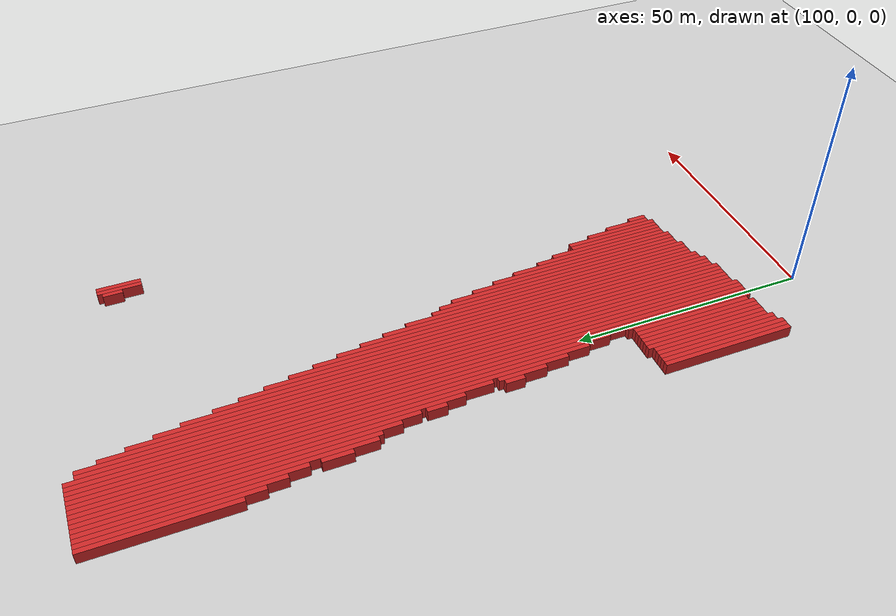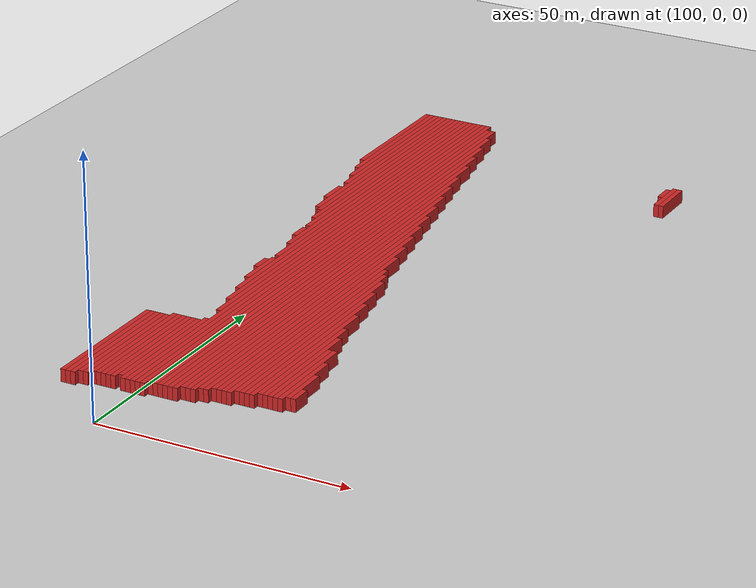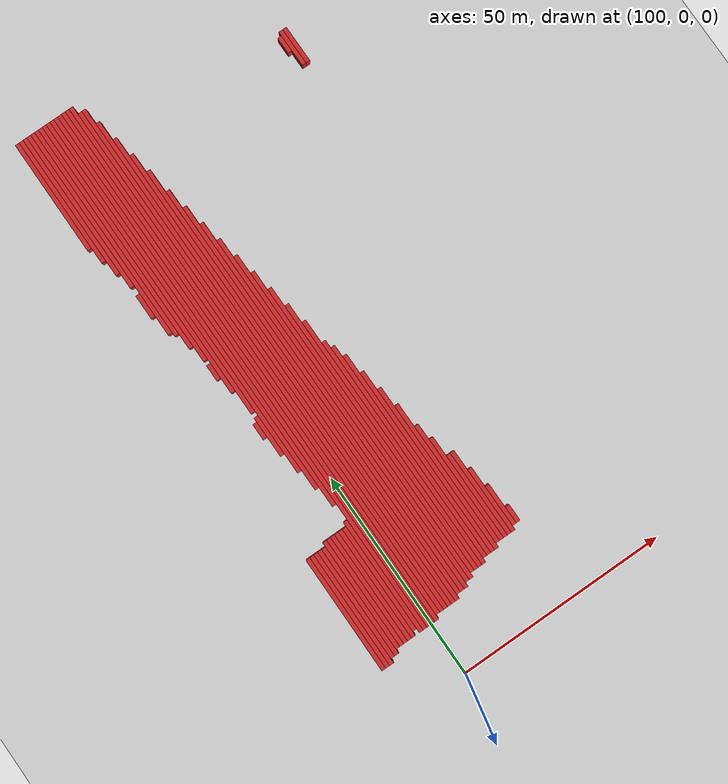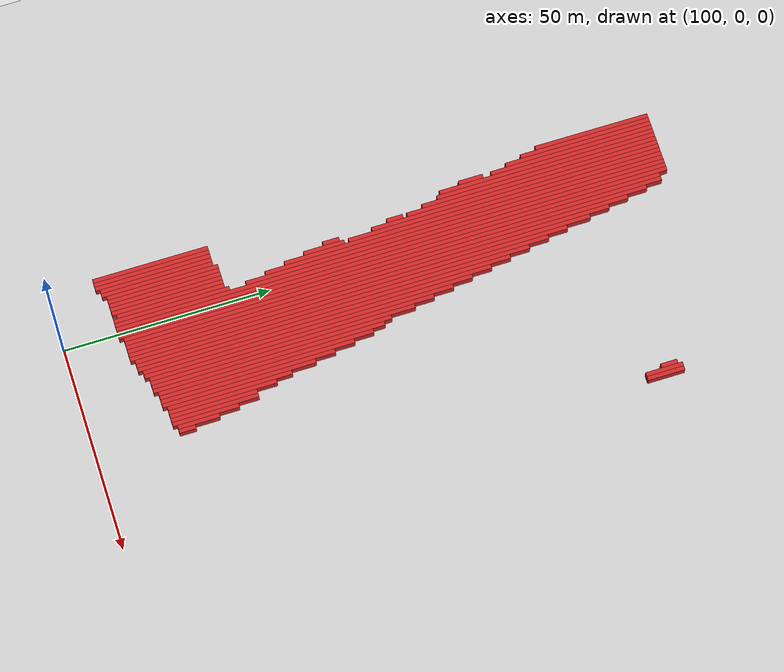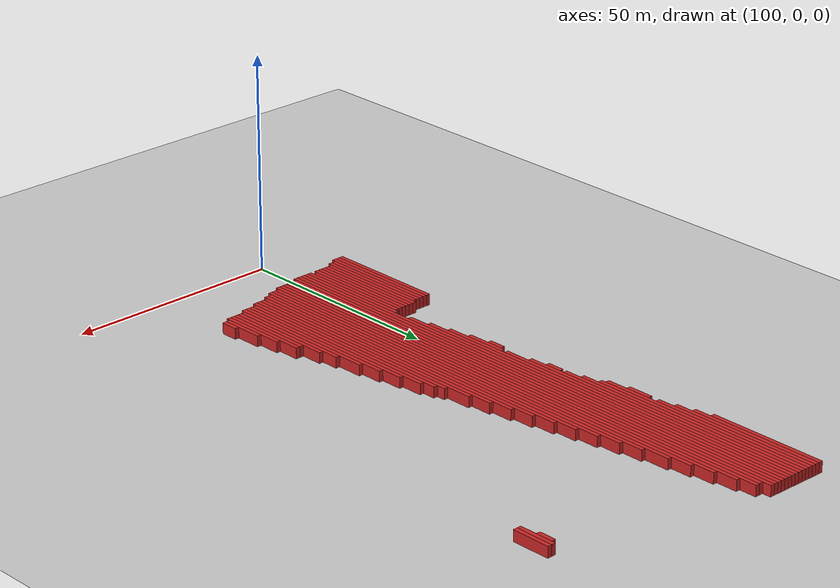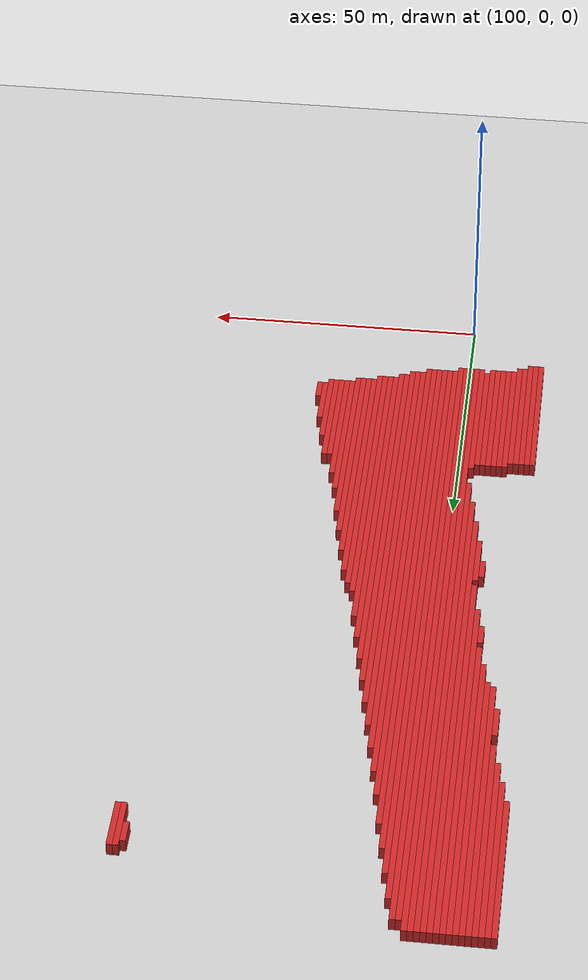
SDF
<sdf version="1.4">
 <world name="1_wall">
  <model name="ground_plane">
   <static>1</static>
   <link name="link">
    <collision name="collision">
     <geometry><plane><normal>0 0 1</normal><size>1000 1000</size></plane></geometry>
     <surface><friction><ode><mu>100</mu><mu2>50</mu2></ode></friction></surface>
    </collision>
    <visual name="visual">
     <cast_shadows>0</cast_shadows>
     <geometry><plane><normal>0 0 1</normal><size>10000 10000</size></plane></geometry>
     <material>
      <script><uri>file://media/materials/scripts/gazebo.material</uri><name>Gazebo/Grey</name></script>
     </material>
    </visual>
    <velocity_decay><linear>0</linear><angular>0</angular></velocity_decay>
   </link>
  </model>
  <model name="Wall_125">
   <static>1</static>
   <link name="Wall_125">
    <collision name="Wall_Collision_125">
     <geometry><box><size>28.0 1.0 2.5</size></box></geometry>
     <pose>0 0 1.25 0 -0 0</pose>
    </collision>
    <visual name="Wall_Visual_125">
     <pose>0 0 1.25 0 -0 0</pose>
     <geometry><box><size>28.0 1.0 2.5</size></box></geometry>
     <material>
      <script><uri>file://media/materials/scripts/gazebo.material</uri><name>Gazebo/Red</name></script>
     </material>
    </visual>
    <velocity_decay><linear>0</linear><angular>0</angular></velocity_decay>
    <pose>85.5 134.0 0 0 0 1.5707963267948966</pose>
   </link>
  </model>
  <model name="Wall_126">
   <static>1</static>
   <link name="Wall_126">
    <collision name="Wall_Collision_126">
     <geometry><box><size>28.0 1.0 2.5</size></box></geometry>
     <pose>0 0 1.25 0 -0 0</pose>
    </collision>
    <visual name="Wall_Visual_126">
     <pose>0 0 1.25 0 -0 0</pose>
     <geometry><box><size>28.0 1.0 2.5</size></box></geometry>
     <material>
      <script><uri>file://media/materials/scripts/gazebo.material</uri><name>Gazebo/Red</name></script>
     </material>
    </visual>
    <velocity_decay><linear>0</linear><angular>0</angular></velocity_decay>
    <pose>86.5 25.0 0 0 0 1.5707963267948966</pose>
   </link>
  </model>
  <model name="Wall_127">
   <static>1</static>
   <link name="Wall_127">
    <collision name="Wall_Collision_127">
     <geometry><box><size>32.0 1.0 2.5</size></box></geometry>
     <pose>0 0 1.25 0 -0 0</pose>
    </collision>
    <visual name="Wall_Visual_127">
     <pose>0 0 1.25 0 -0 0</pose>
     <geometry><box><size>32.0 1.0 2.5</size></box></geometry>
     <material>
      <script><uri>file://media/materials/scripts/gazebo.material</uri><name>Gazebo/Red</name></script>
     </material>
    </visual>
    <velocity_decay><linear>0</linear><angular>0</angular></velocity_decay>
    <pose>86.5 132.0 0 0 0 1.5707963267948966</pose>
   </link>
  </model>
  <model name="Wall_128">
   <static>1</static>
   <link name="Wall_128">
    <collision name="Wall_Collision_128">
     <geometry><box><size>28.0 1.0 2.5</size></box></geometry>
     <pose>0 0 1.25 0 -0 0</pose>
    </collision>
    <visual name="Wall_Visual_128">
     <pose>0 0 1.25 0 -0 0</pose>
     <geometry><box><size>28.0 1.0 2.5</size></box></geometry>
     <material>
      <script><uri>file://media/materials/scripts/gazebo.material</uri><name>Gazebo/Red</name></script>
     </material>
    </visual>
    <velocity_decay><linear>0</linear><angular>0</angular></velocity_decay>
    <pose>87.5 25.0 0 0 0 1.5707963267948966</pose>
   </link>
  </model>
  <model name="Wall_129">
   <static>1</static>
   <link name="Wall_129">
    <collision name="Wall_Collision_129">
     <geometry><box><size>36.0 1.0 2.5</size></box></geometry>
     <pose>0 0 1.25 0 -0 0</pose>
    </collision>
    <visual name="Wall_Visual_129">
     <pose>0 0 1.25 0 -0 0</pose>
     <geometry><box><size>36.0 1.0 2.5</size></box></geometry>
     <material>
      <script><uri>file://media/materials/scripts/gazebo.material</uri><name>Gazebo/Red</name></script>
     </material>
    </visual>
    <velocity_decay><linear>0</linear><angular>0</angular></velocity_decay>
    <pose>87.5 130.0 0 0 0 1.5707963267948966</pose>
   </link>
  </model>
  <model name="Wall_130">
   <static>1</static>
   <link name="Wall_130">
    <collision name="Wall_Collision_130">
     <geometry><box><size>28.0 1.0 2.5</size></box></geometry>
     <pose>0 0 1.25 0 -0 0</pose>
    </collision>
    <visual name="Wall_Visual_130">
     <pose>0 0 1.25 0 -0 0</pose>
     <geometry><box><size>28.0 1.0 2.5</size></box></geometry>
     <material>
      <script><uri>file://media/materials/scripts/gazebo.material</uri><name>Gazebo/Red</name></script>
     </material>
    </visual>
    <velocity_decay><linear>0</linear><angular>0</angular></velocity_decay>
    <pose>88.5 25.0 0 0 0 1.5707963267948966</pose>
   </link>
  </model>
  <model name="Wall_131">
   <static>1</static>
   <link name="Wall_131">
    <collision name="Wall_Collision_131">
     <geometry><box><size>6.0 1.0 2.5</size></box></geometry>
     <pose>0 0 1.25 0 -0 0</pose>
    </collision>
    <visual name="Wall_Visual_131">
     <pose>0 0 1.25 0 -0 0</pose>
     <geometry><box><size>6.0 1.0 2.5</size></box></geometry>
     <material>
      <script><uri>file://media/materials/scripts/gazebo.material</uri><name>Gazebo/Red</name></script>
     </material>
    </visual>
    <velocity_decay><linear>0</linear><angular>0</angular></velocity_decay>
    <pose>88.5 103.0 0 0 0 1.5707963267948966</pose>
   </link>
  </model>
  <model name="Wall_132">
   <static>1</static>
   <link name="Wall_132">
    <collision name="Wall_Collision_132">
     <geometry><box><size>40.0 1.0 2.5</size></box></geometry>
     <pose>0 0 1.25 0 -0 0</pose>
    </collision>
    <visual name="Wall_Visual_132">
     <pose>0 0 1.25 0 -0 0</pose>
     <geometry><box><size>40.0 1.0 2.5</size></box></geometry>
     <material>
      <script><uri>file://media/materials/scripts/gazebo.material</uri><name>Gazebo/Red</name></script>
     </material>
    </visual>
    <velocity_decay><linear>0</linear><angular>0</angular></velocity_decay>
    <pose>88.5 128.0 0 0 0 1.5707963267948966</pose>
   </link>
  </model>
  <model name="Wall_133">
   <static>1</static>
   <link name="Wall_133">
    <collision name="Wall_Collision_133">
     <geometry><box><size>27.0 1.0 2.5</size></box></geometry>
     <pose>0 0 1.25 0 -0 0</pose>
    </collision>
    <visual name="Wall_Visual_133">
     <pose>0 0 1.25 0 -0 0</pose>
     <geometry><box><size>27.0 1.0 2.5</size></box></geometry>
     <material>
      <script><uri>file://media/materials/scripts/gazebo.material</uri><name>Gazebo/Red</name></script>
     </material>
    </visual>
    <velocity_decay><linear>0</linear><angular>0</angular></velocity_decay>
    <pose>89.5 25.5 0 0 0 1.5707963267948966</pose>
   </link>
  </model>
  <model name="Wall_134">
   <static>1</static>
   <link name="Wall_134">
    <collision name="Wall_Collision_134">
     <geometry><box><size>53.0 1.0 2.5</size></box></geometry>
     <pose>0 0 1.25 0 -0 0</pose>
    </collision>
    <visual name="Wall_Visual_134">
     <pose>0 0 1.25 0 -0 0</pose>
     <geometry><box><size>53.0 1.0 2.5</size></box></geometry>
     <material>
      <script><uri>file://media/materials/scripts/gazebo.material</uri><name>Gazebo/Red</name></script>
     </material>
    </visual>
    <velocity_decay><linear>0</linear><angular>0</angular></velocity_decay>
    <pose>89.5 121.5 0 0 0 1.5707963267948966</pose>
   </link>
  </model>
  <model name="Wall_135">
   <static>1</static>
   <link name="Wall_135">
    <collision name="Wall_Collision_135">
     <geometry><box><size>27.0 1.0 2.5</size></box></geometry>
     <pose>0 0 1.25 0 -0 0</pose>
    </collision>
    <visual name="Wall_Visual_135">
     <pose>0 0 1.25 0 -0 0</pose>
     <geometry><box><size>27.0 1.0 2.5</size></box></geometry>
     <material>
      <script><uri>file://media/materials/scripts/gazebo.material</uri><name>Gazebo/Red</name></script>
     </material>
    </visual>
    <velocity_decay><linear>0</linear><angular>0</angular></velocity_decay>
    <pose>90.5 25.5 0 0 0 1.5707963267948966</pose>
   </link>
  </model>
  <model name="Wall_136">
   <static>1</static>
   <link name="Wall_136">
    <collision name="Wall_Collision_136">
     <geometry><box><size>54.0 1.0 2.5</size></box></geometry>
     <pose>0 0 1.25 0 -0 0</pose>
    </collision>
    <visual name="Wall_Visual_136">
     <pose>0 0 1.25 0 -0 0</pose>
     <geometry><box><size>54.0 1.0 2.5</size></box></geometry>
     <material>
      <script><uri>file://media/materials/scripts/gazebo.material</uri><name>Gazebo/Red</name></script>
     </material>
    </visual>
    <velocity_decay><linear>0</linear><angular>0</angular></velocity_decay>
    <pose>90.5 121.0 0 0 0 1.5707963267948966</pose>
   </link>
  </model>
  <model name="Wall_137">
   <static>1</static>
   <link name="Wall_137">
    <collision name="Wall_Collision_137">
     <geometry><box><size>27.0 1.0 2.5</size></box></geometry>
     <pose>0 0 1.25 0 -0 0</pose>
    </collision>
    <visual name="Wall_Visual_137">
     <pose>0 0 1.25 0 -0 0</pose>
     <geometry><box><size>27.0 1.0 2.5</size></box></geometry>
     <material>
      <script><uri>file://media/materials/scripts/gazebo.material</uri><name>Gazebo/Red</name></script>
     </material>
    </visual>
    <velocity_decay><linear>0</linear><angular>0</angular></velocity_decay>
    <pose>91.5 26.5 0 0 0 1.5707963267948966</pose>
   </link>
  </model>
  <model name="Wall_138">
   <static>1</static>
   <link name="Wall_138">
    <collision name="Wall_Collision_138">
     <geometry><box><size>58.0 1.0 2.5</size></box></geometry>
     <pose>0 0 1.25 0 -0 0</pose>
    </collision>
    <visual name="Wall_Visual_138">
     <pose>0 0 1.25 0 -0 0</pose>
     <geometry><box><size>58.0 1.0 2.5</size></box></geometry>
     <material>
      <script><uri>file://media/materials/scripts/gazebo.material</uri><name>Gazebo/Red</name></script>
     </material>
    </visual>
    <velocity_decay><linear>0</linear><angular>0</angular></velocity_decay>
    <pose>91.5 119.0 0 0 0 1.5707963267948966</pose>
   </link>
  </model>
  <model name="Wall_139">
   <static>1</static>
   <link name="Wall_139">
    <collision name="Wall_Collision_139">
     <geometry><box><size>27.0 1.0 2.5</size></box></geometry>
     <pose>0 0 1.25 0 -0 0</pose>
    </collision>
    <visual name="Wall_Visual_139">
     <pose>0 0 1.25 0 -0 0</pose>
     <geometry><box><size>27.0 1.0 2.5</size></box></geometry>
     <material>
      <script><uri>file://media/materials/scripts/gazebo.material</uri><name>Gazebo/Red</name></script>
     </material>
    </visual>
    <velocity_decay><linear>0</linear><angular>0</angular></velocity_decay>
    <pose>92.5 26.5 0 0 0 1.5707963267948966</pose>
   </link>
  </model>
  <model name="Wall_140">
   <static>1</static>
   <link name="Wall_140">
    <collision name="Wall_Collision_140">
     <geometry><box><size>4.0 1.0 2.5</size></box></geometry>
     <pose>0 0 1.25 0 -0 0</pose>
    </collision>
    <visual name="Wall_Visual_140">
     <pose>0 0 1.25 0 -0 0</pose>
     <geometry><box><size>4.0 1.0 2.5</size></box></geometry>
     <material>
      <script><uri>file://media/materials/scripts/gazebo.material</uri><name>Gazebo/Red</name></script>
     </material>
    </visual>
    <velocity_decay><linear>0</linear><angular>0</angular></velocity_decay>
    <pose>92.5 83.0 0 0 0 1.5707963267948966</pose>
   </link>
  </model>
  <model name="Wall_141">
   <static>1</static>
   <link name="Wall_141">
    <collision name="Wall_Collision_141">
     <geometry><box><size>62.0 1.0 2.5</size></box></geometry>
     <pose>0 0 1.25 0 -0 0</pose>
    </collision>
    <visual name="Wall_Visual_141">
     <pose>0 0 1.25 0 -0 0</pose>
     <geometry><box><size>62.0 1.0 2.5</size></box></geometry>
     <material>
      <script><uri>file://media/materials/scripts/gazebo.material</uri><name>Gazebo/Red</name></script>
     </material>
    </visual>
    <velocity_decay><linear>0</linear><angular>0</angular></velocity_decay>
    <pose>92.5 117.0 0 0 0 1.5707963267948966</pose>
   </link>
  </model>
  <model name="Wall_142">
   <static>1</static>
   <link name="Wall_142">
    <collision name="Wall_Collision_142">
     <geometry><box><size>27.0 1.0 2.5</size></box></geometry>
     <pose>0 0 1.25 0 -0 0</pose>
    </collision>
    <visual name="Wall_Visual_142">
     <pose>0 0 1.25 0 -0 0</pose>
     <geometry><box><size>27.0 1.0 2.5</size></box></geometry>
     <material>
      <script><uri>file://media/materials/scripts/gazebo.material</uri><name>Gazebo/Red</name></script>
     </material>
    </visual>
    <velocity_decay><linear>0</linear><angular>0</angular></velocity_decay>
    <pose>93.5 26.5 0 0 0 1.5707963267948966</pose>
   </link>
  </model>
  <model name="Wall_143">
   <static>1</static>
   <link name="Wall_143">
    <collision name="Wall_Collision_143">
     <geometry><box><size>4.0 1.0 2.5</size></box></geometry>
     <pose>0 0 1.25 0 -0 0</pose>
    </collision>
    <visual name="Wall_Visual_143">
     <pose>0 0 1.25 0 -0 0</pose>
     <geometry><box><size>4.0 1.0 2.5</size></box></geometry>
     <material>
      <script><uri>file://media/materials/scripts/gazebo.material</uri><name>Gazebo/Red</name></script>
     </material>
    </visual>
    <velocity_decay><linear>0</linear><angular>0</angular></velocity_decay>
    <pose>93.5 67.0 0 0 0 1.5707963267948966</pose>
   </link>
  </model>
  <model name="Wall_144">
   <static>1</static>
   <link name="Wall_144">
    <collision name="Wall_Collision_144">
     <geometry><box><size>71.0 1.0 2.5</size></box></geometry>
     <pose>0 0 1.25 0 -0 0</pose>
    </collision>
    <visual name="Wall_Visual_144">
     <pose>0 0 1.25 0 -0 0</pose>
     <geometry><box><size>71.0 1.0 2.5</size></box></geometry>
     <material>
      <script><uri>file://media/materials/scripts/gazebo.material</uri><name>Gazebo/Red</name></script>
     </material>
    </visual>
    <velocity_decay><linear>0</linear><angular>0</angular></velocity_decay>
    <pose>93.5 112.5 0 0 0 1.5707963267948966</pose>
   </link>
  </model>
  <model name="Wall_145">
   <static>1</static>
   <link name="Wall_145">
    <collision name="Wall_Collision_145">
     <geometry><box><size>27.0 1.0 2.5</size></box></geometry>
     <pose>0 0 1.25 0 -0 0</pose>
    </collision>
    <visual name="Wall_Visual_145">
     <pose>0 0 1.25 0 -0 0</pose>
     <geometry><box><size>27.0 1.0 2.5</size></box></geometry>
     <material>
      <script><uri>file://media/materials/scripts/gazebo.material</uri><name>Gazebo/Red</name></script>
     </material>
    </visual>
    <velocity_decay><linear>0</linear><angular>0</angular></velocity_decay>
    <pose>94.5 26.5 0 0 0 1.5707963267948966</pose>
   </link>
  </model>
  <model name="Wall_146">
   <static>1</static>
   <link name="Wall_146">
    <collision name="Wall_Collision_146">
     <geometry><box><size>10.0 1.0 2.5</size></box></geometry>
     <pose>0 0 1.25 0 -0 0</pose>
    </collision>
    <visual name="Wall_Visual_146">
     <pose>0 0 1.25 0 -0 0</pose>
     <geometry><box><size>10.0 1.0 2.5</size></box></geometry>
     <material>
      <script><uri>file://media/materials/scripts/gazebo.material</uri><name>Gazebo/Red</name></script>
     </material>
    </visual>
    <velocity_decay><linear>0</linear><angular>0</angular></velocity_decay>
    <pose>94.5 65.0 0 0 0 1.5707963267948966</pose>
   </link>
  </model>
  <model name="Wall_147">
   <static>1</static>
   <link name="Wall_147">
    <collision name="Wall_Collision_147">
     <geometry><box><size>77.0 1.0 2.5</size></box></geometry>
     <pose>0 0 1.25 0 -0 0</pose>
    </collision>
    <visual name="Wall_Visual_147">
     <pose>0 0 1.25 0 -0 0</pose>
     <geometry><box><size>77.0 1.0 2.5</size></box></geometry>
     <material>
      <script><uri>file://media/materials/scripts/gazebo.material</uri><name>Gazebo/Red</name></script>
     </material>
    </visual>
    <velocity_decay><linear>0</linear><angular>0</angular></velocity_decay>
    <pose>94.5 109.5 0 0 0 1.5707963267948966</pose>
   </link>
  </model>
  <model name="Wall_148">
   <static>1</static>
   <link name="Wall_148">
    <collision name="Wall_Collision_148">
     <geometry><box><size>27.0 1.0 2.5</size></box></geometry>
     <pose>0 0 1.25 0 -0 0</pose>
    </collision>
    <visual name="Wall_Visual_148">
     <pose>0 0 1.25 0 -0 0</pose>
     <geometry><box><size>27.0 1.0 2.5</size></box></geometry>
     <material>
      <script><uri>file://media/materials/scripts/gazebo.material</uri><name>Gazebo/Red</name></script>
     </material>
    </visual>
    <velocity_decay><linear>0</linear><angular>0</angular></velocity_decay>
    <pose>95.5 26.5 0 0 0 1.5707963267948966</pose>
   </link>
  </model>
  <model name="Wall_149">
   <static>1</static>
   <link name="Wall_149">
    <collision name="Wall_Collision_149">
     <geometry><box><size>93.0 1.0 2.5</size></box></geometry>
     <pose>0 0 1.25 0 -0 0</pose>
    </collision>
    <visual name="Wall_Visual_149">
     <pose>0 0 1.25 0 -0 0</pose>
     <geometry><box><size>93.0 1.0 2.5</size></box></geometry>
     <material>
      <script><uri>file://media/materials/scripts/gazebo.material</uri><name>Gazebo/Red</name></script>
     </material>
    </visual>
    <velocity_decay><linear>0</linear><angular>0</angular></velocity_decay>
    <pose>95.5 101.5 0 0 0 1.5707963267948966</pose>
   </link>
  </model>
  <model name="Wall_150">
   <static>1</static>
   <link name="Wall_150">
    <collision name="Wall_Collision_150">
     <geometry><box><size>26.0 1.0 2.5</size></box></geometry>
     <pose>0 0 1.25 0 -0 0</pose>
    </collision>
    <visual name="Wall_Visual_150">
     <pose>0 0 1.25 0 -0 0</pose>
     <geometry><box><size>26.0 1.0 2.5</size></box></geometry>
     <material>
      <script><uri>file://media/materials/scripts/gazebo.material</uri><name>Gazebo/Red</name></script>
     </material>
    </visual>
    <velocity_decay><linear>0</linear><angular>0</angular></velocity_decay>
    <pose>96.5 27.0 0 0 0 1.5707963267948966</pose>
   </link>
  </model>
  <model name="Wall_151">
   <static>1</static>
   <link name="Wall_151">
    <collision name="Wall_Collision_151">
     <geometry><box><size>98.0 1.0 2.5</size></box></geometry>
     <pose>0 0 1.25 0 -0 0</pose>
    </collision>
    <visual name="Wall_Visual_151">
     <pose>0 0 1.25 0 -0 0</pose>
     <geometry><box><size>98.0 1.0 2.5</size></box></geometry>
     <material>
      <script><uri>file://media/materials/scripts/gazebo.material</uri><name>Gazebo/Red</name></script>
     </material>
    </visual>
    <velocity_decay><linear>0</linear><angular>0</angular></velocity_decay>
    <pose>96.5 99.0 0 0 0 1.5707963267948966</pose>
   </link>
  </model>
  <model name="Wall_152">
   <static>1</static>
   <link name="Wall_152">
    <collision name="Wall_Collision_152">
     <geometry><box><size>28.0 1.0 2.5</size></box></geometry>
     <pose>0 0 1.25 0 -0 0</pose>
    </collision>
    <visual name="Wall_Visual_152">
     <pose>0 0 1.25 0 -0 0</pose>
     <geometry><box><size>28.0 1.0 2.5</size></box></geometry>
     <material>
      <script><uri>file://media/materials/scripts/gazebo.material</uri><name>Gazebo/Red</name></script>
     </material>
    </visual>
    <velocity_decay><linear>0</linear><angular>0</angular></velocity_decay>
    <pose>97.5 27.0 0 0 0 1.5707963267948966</pose>
   </link>
  </model>
  <model name="Wall_153">
   <static>1</static>
   <link name="Wall_153">
    <collision name="Wall_Collision_153">
     <geometry><box><size>103.0 1.0 2.5</size></box></geometry>
     <pose>0 0 1.25 0 -0 0</pose>
    </collision>
    <visual name="Wall_Visual_153">
     <pose>0 0 1.25 0 -0 0</pose>
     <geometry><box><size>103.0 1.0 2.5</size></box></geometry>
     <material>
      <script><uri>file://media/materials/scripts/gazebo.material</uri><name>Gazebo/Red</name></script>
     </material>
    </visual>
    <velocity_decay><linear>0</linear><angular>0</angular></velocity_decay>
    <pose>97.5 96.5 0 0 0 1.5707963267948966</pose>
   </link>
  </model>
  <model name="Wall_154">
   <static>1</static>
   <link name="Wall_154">
    <collision name="Wall_Collision_154">
     <geometry><box><size>135.0 1.0 2.5</size></box></geometry>
     <pose>0 0 1.25 0 -0 0</pose>
    </collision>
    <visual name="Wall_Visual_154">
     <pose>0 0 1.25 0 -0 0</pose>
     <geometry><box><size>135.0 1.0 2.5</size></box></geometry>
     <material>
      <script><uri>file://media/materials/scripts/gazebo.material</uri><name>Gazebo/Red</name></script>
     </material>
    </visual>
    <velocity_decay><linear>0</linear><angular>0</angular></velocity_decay>
    <pose>98.5 80.5 0 0 0 1.5707963267948966</pose>
   </link>
  </model>
  <model name="Wall_155">
   <static>1</static>
   <link name="Wall_155">
    <collision name="Wall_Collision_155">
     <geometry><box><size>135.0 1.0 2.5</size></box></geometry>
     <pose>0 0 1.25 0 -0 0</pose>
    </collision>
    <visual name="Wall_Visual_155">
     <pose>0 0 1.25 0 -0 0</pose>
     <geometry><box><size>135.0 1.0 2.5</size></box></geometry>
     <material>
      <script><uri>file://media/materials/scripts/gazebo.material</uri><name>Gazebo/Red</name></script>
     </material>
    </visual>
    <velocity_decay><linear>0</linear><angular>0</angular></velocity_decay>
    <pose>99.5 80.5 0 0 0 1.5707963267948966</pose>
   </link>
  </model>
  <model name="Wall_156">
   <static>1</static>
   <link name="Wall_156">
    <collision name="Wall_Collision_156">
     <geometry><box><size>133.0 1.0 2.5</size></box></geometry>
     <pose>0 0 1.25 0 -0 0</pose>
    </collision>
    <visual name="Wall_Visual_156">
     <pose>0 0 1.25 0 -0 0</pose>
     <geometry><box><size>133.0 1.0 2.5</size></box></geometry>
     <material>
      <script><uri>file://media/materials/scripts/gazebo.material</uri><name>Gazebo/Red</name></script>
     </material>
    </visual>
    <velocity_decay><linear>0</linear><angular>0</angular></velocity_decay>
    <pose>100.5 79.5 0 0 0 1.5707963267948966</pose>
   </link>
  </model>
  <model name="Wall_157">
   <static>1</static>
   <link name="Wall_157">
    <collision name="Wall_Collision_157">
     <geometry><box><size>133.0 1.0 2.5</size></box></geometry>
     <pose>0 0 1.25 0 -0 0</pose>
    </collision>
    <visual name="Wall_Visual_157">
     <pose>0 0 1.25 0 -0 0</pose>
     <geometry><box><size>133.0 1.0 2.5</size></box></geometry>
     <material>
      <script><uri>file://media/materials/scripts/gazebo.material</uri><name>Gazebo/Red</name></script>
     </material>
    </visual>
    <velocity_decay><linear>0</linear><angular>0</angular></velocity_decay>
    <pose>101.5 79.5 0 0 0 1.5707963267948966</pose>
   </link>
  </model>
  <model name="Wall_158">
   <static>1</static>
   <link name="Wall_158">
    <collision name="Wall_Collision_158">
     <geometry><box><size>128.0 1.0 2.5</size></box></geometry>
     <pose>0 0 1.25 0 -0 0</pose>
    </collision>
    <visual name="Wall_Visual_158">
     <pose>0 0 1.25 0 -0 0</pose>
     <geometry><box><size>128.0 1.0 2.5</size></box></geometry>
     <material>
      <script><uri>file://media/materials/scripts/gazebo.material</uri><name>Gazebo/Red</name></script>
     </material>
    </visual>
    <velocity_decay><linear>0</linear><angular>0</angular></velocity_decay>
    <pose>102.5 78.0 0 0 0 1.5707963267948966</pose>
   </link>
  </model>
  <model name="Wall_159">
   <static>1</static>
   <link name="Wall_159">
    <collision name="Wall_Collision_159">
     <geometry><box><size>123.0 1.0 2.5</size></box></geometry>
     <pose>0 0 1.25 0 -0 0</pose>
    </collision>
    <visual name="Wall_Visual_159">
     <pose>0 0 1.25 0 -0 0</pose>
     <geometry><box><size>123.0 1.0 2.5</size></box></geometry>
     <material>
      <script><uri>file://media/materials/scripts/gazebo.material</uri><name>Gazebo/Red</name></script>
     </material>
    </visual>
    <velocity_decay><linear>0</linear><angular>0</angular></velocity_decay>
    <pose>103.5 75.5 0 0 0 1.5707963267948966</pose>
   </link>
  </model>
  <model name="Wall_160">
   <static>1</static>
   <link name="Wall_160">
    <collision name="Wall_Collision_160">
     <geometry><box><size>118.0 1.0 2.5</size></box></geometry>
     <pose>0 0 1.25 0 -0 0</pose>
    </collision>
    <visual name="Wall_Visual_160">
     <pose>0 0 1.25 0 -0 0</pose>
     <geometry><box><size>118.0 1.0 2.5</size></box></geometry>
     <material>
      <script><uri>file://media/materials/scripts/gazebo.material</uri><name>Gazebo/Red</name></script>
     </material>
    </visual>
    <velocity_decay><linear>0</linear><angular>0</angular></velocity_decay>
    <pose>104.5 73.0 0 0 0 1.5707963267948966</pose>
   </link>
  </model>
  <model name="Wall_161">
   <static>1</static>
   <link name="Wall_161">
    <collision name="Wall_Collision_161">
     <geometry><box><size>113.0 1.0 2.5</size></box></geometry>
     <pose>0 0 1.25 0 -0 0</pose>
    </collision>
    <visual name="Wall_Visual_161">
     <pose>0 0 1.25 0 -0 0</pose>
     <geometry><box><size>113.0 1.0 2.5</size></box></geometry>
     <material>
      <script><uri>file://media/materials/scripts/gazebo.material</uri><name>Gazebo/Red</name></script>
     </material>
    </visual>
    <velocity_decay><linear>0</linear><angular>0</angular></velocity_decay>
    <pose>105.5 70.5 0 0 0 1.5707963267948966</pose>
   </link>
  </model>
  <model name="Wall_162">
   <static>1</static>
   <link name="Wall_162">
    <collision name="Wall_Collision_162">
     <geometry><box><size>107.0 1.0 2.5</size></box></geometry>
     <pose>0 0 1.25 0 -0 0</pose>
    </collision>
    <visual name="Wall_Visual_162">
     <pose>0 0 1.25 0 -0 0</pose>
     <geometry><box><size>107.0 1.0 2.5</size></box></geometry>
     <material>
      <script><uri>file://media/materials/scripts/gazebo.material</uri><name>Gazebo/Red</name></script>
     </material>
    </visual>
    <velocity_decay><linear>0</linear><angular>0</angular></velocity_decay>
    <pose>106.5 67.5 0 0 0 1.5707963267948966</pose>
   </link>
  </model>
  <model name="Wall_163">
   <static>1</static>
   <link name="Wall_163">
    <collision name="Wall_Collision_163">
     <geometry><box><size>102.0 1.0 2.5</size></box></geometry>
     <pose>0 0 1.25 0 -0 0</pose>
    </collision>
    <visual name="Wall_Visual_163">
     <pose>0 0 1.25 0 -0 0</pose>
     <geometry><box><size>102.0 1.0 2.5</size></box></geometry>
     <material>
      <script><uri>file://media/materials/scripts/gazebo.material</uri><name>Gazebo/Red</name></script>
     </material>
    </visual>
    <velocity_decay><linear>0</linear><angular>0</angular></velocity_decay>
    <pose>107.5 65.0 0 0 0 1.5707963267948966</pose>
   </link>
  </model>
  <model name="Wall_164">
   <static>1</static>
   <link name="Wall_164">
    <collision name="Wall_Collision_164">
     <geometry><box><size>96.0 1.0 2.5</size></box></geometry>
     <pose>0 0 1.25 0 -0 0</pose>
    </collision>
    <visual name="Wall_Visual_164">
     <pose>0 0 1.25 0 -0 0</pose>
     <geometry><box><size>96.0 1.0 2.5</size></box></geometry>
     <material>
      <script><uri>file://media/materials/scripts/gazebo.material</uri><name>Gazebo/Red</name></script>
     </material>
    </visual>
    <velocity_decay><linear>0</linear><angular>0</angular></velocity_decay>
    <pose>108.5 63.0 0 0 0 1.5707963267948966</pose>
   </link>
  </model>
  <model name="Wall_165">
   <static>1</static>
   <link name="Wall_165">
    <collision name="Wall_Collision_165">
     <geometry><box><size>91.0 1.0 2.5</size></box></geometry>
     <pose>0 0 1.25 0 -0 0</pose>
    </collision>
    <visual name="Wall_Visual_165">
     <pose>0 0 1.25 0 -0 0</pose>
     <geometry><box><size>91.0 1.0 2.5</size></box></geometry>
     <material>
      <script><uri>file://media/materials/scripts/gazebo.material</uri><name>Gazebo/Red</name></script>
     </material>
    </visual>
    <velocity_decay><linear>0</linear><angular>0</angular></velocity_decay>
    <pose>109.5 60.5 0 0 0 1.5707963267948966</pose>
   </link>
  </model>
  <model name="Wall_166">
   <static>1</static>
   <link name="Wall_166">
    <collision name="Wall_Collision_166">
     <geometry><box><size>86.0 1.0 2.5</size></box></geometry>
     <pose>0 0 1.25 0 -0 0</pose>
    </collision>
    <visual name="Wall_Visual_166">
     <pose>0 0 1.25 0 -0 0</pose>
     <geometry><box><size>86.0 1.0 2.5</size></box></geometry>
     <material>
      <script><uri>file://media/materials/scripts/gazebo.material</uri><name>Gazebo/Red</name></script>
     </material>
    </visual>
    <velocity_decay><linear>0</linear><angular>0</angular></velocity_decay>
    <pose>110.5 58.0 0 0 0 1.5707963267948966</pose>
   </link>
  </model>
  <model name="Wall_167">
   <static>1</static>
   <link name="Wall_167">
    <collision name="Wall_Collision_167">
     <geometry><box><size>80.0 1.0 2.5</size></box></geometry>
     <pose>0 0 1.25 0 -0 0</pose>
    </collision>
    <visual name="Wall_Visual_167">
     <pose>0 0 1.25 0 -0 0</pose>
     <geometry><box><size>80.0 1.0 2.5</size></box></geometry>
     <material>
      <script><uri>file://media/materials/scripts/gazebo.material</uri><name>Gazebo/Red</name></script>
     </material>
    </visual>
    <velocity_decay><linear>0</linear><angular>0</angular></velocity_decay>
    <pose>111.5 56.0 0 0 0 1.5707963267948966</pose>
   </link>
  </model>
  <model name="Wall_168">
   <static>1</static>
   <link name="Wall_168">
    <collision name="Wall_Collision_168">
     <geometry><box><size>75.0 1.0 2.5</size></box></geometry>
     <pose>0 0 1.25 0 -0 0</pose>
    </collision>
    <visual name="Wall_Visual_168">
     <pose>0 0 1.25 0 -0 0</pose>
     <geometry><box><size>75.0 1.0 2.5</size></box></geometry>
     <material>
      <script><uri>file://media/materials/scripts/gazebo.material</uri><name>Gazebo/Red</name></script>
     </material>
    </visual>
    <velocity_decay><linear>0</linear><angular>0</angular></velocity_decay>
    <pose>112.5 53.5 0 0 0 1.5707963267948966</pose>
   </link>
  </model>
  <model name="Wall_169">
   <static>1</static>
   <link name="Wall_169">
    <collision name="Wall_Collision_169">
     <geometry><box><size>69.0 1.0 2.5</size></box></geometry>
     <pose>0 0 1.25 0 -0 0</pose>
    </collision>
    <visual name="Wall_Visual_169">
     <pose>0 0 1.25 0 -0 0</pose>
     <geometry><box><size>69.0 1.0 2.5</size></box></geometry>
     <material>
      <script><uri>file://media/materials/scripts/gazebo.material</uri><name>Gazebo/Red</name></script>
     </material>
    </visual>
    <velocity_decay><linear>0</linear><angular>0</angular></velocity_decay>
    <pose>113.5 51.5 0 0 0 1.5707963267948966</pose>
   </link>
  </model>
  <model name="Wall_170">
   <static>1</static>
   <link name="Wall_170">
    <collision name="Wall_Collision_170">
     <geometry><box><size>64.0 1.0 2.5</size></box></geometry>
     <pose>0 0 1.25 0 -0 0</pose>
    </collision>
    <visual name="Wall_Visual_170">
     <pose>0 0 1.25 0 -0 0</pose>
     <geometry><box><size>64.0 1.0 2.5</size></box></geometry>
     <material>
      <script><uri>file://media/materials/scripts/gazebo.material</uri><name>Gazebo/Red</name></script>
     </material>
    </visual>
    <velocity_decay><linear>0</linear><angular>0</angular></velocity_decay>
    <pose>114.5 49.0 0 0 0 1.5707963267948966</pose>
   </link>
  </model>
  <model name="Wall_171">
   <static>1</static>
   <link name="Wall_171">
    <collision name="Wall_Collision_171">
     <geometry><box><size>58.0 1.0 2.5</size></box></geometry>
     <pose>0 0 1.25 0 -0 0</pose>
    </collision>
    <visual name="Wall_Visual_171">
     <pose>0 0 1.25 0 -0 0</pose>
     <geometry><box><size>58.0 1.0 2.5</size></box></geometry>
     <material>
      <script><uri>file://media/materials/scripts/gazebo.material</uri><name>Gazebo/Red</name></script>
     </material>
    </visual>
    <velocity_decay><linear>0</linear><angular>0</angular></velocity_decay>
    <pose>115.5 46.0 0 0 0 1.5707963267948966</pose>
   </link>
  </model>
  <model name="Wall_172">
   <static>1</static>
   <link name="Wall_172">
    <collision name="Wall_Collision_172">
     <geometry><box><size>56.0 1.0 2.5</size></box></geometry>
     <pose>0 0 1.25 0 -0 0</pose>
    </collision>
    <visual name="Wall_Visual_172">
     <pose>0 0 1.25 0 -0 0</pose>
     <geometry><box><size>56.0 1.0 2.5</size></box></geometry>
     <material>
      <script><uri>file://media/materials/scripts/gazebo.material</uri><name>Gazebo/Red</name></script>
     </material>
    </visual>
    <velocity_decay><linear>0</linear><angular>0</angular></velocity_decay>
    <pose>116.5 45.0 0 0 0 1.5707963267948966</pose>
   </link>
  </model>
  <model name="Wall_173">
   <static>1</static>
   <link name="Wall_173">
    <collision name="Wall_Collision_173">
     <geometry><box><size>52.0 1.0 2.5</size></box></geometry>
     <pose>0 0 1.25 0 -0 0</pose>
    </collision>
    <visual name="Wall_Visual_173">
     <pose>0 0 1.25 0 -0 0</pose>
     <geometry><box><size>52.0 1.0 2.5</size></box></geometry>
     <material>
      <script><uri>file://media/materials/scripts/gazebo.material</uri><name>Gazebo/Red</name></script>
     </material>
    </visual>
    <velocity_decay><linear>0</linear><angular>0</angular></velocity_decay>
    <pose>117.5 44.0 0 0 0 1.5707963267948966</pose>
   </link>
  </model>
  <model name="Wall_174">
   <static>1</static>
   <link name="Wall_174">
    <collision name="Wall_Collision_174">
     <geometry><box><size>47.0 1.0 2.5</size></box></geometry>
     <pose>0 0 1.25 0 -0 0</pose>
    </collision>
    <visual name="Wall_Visual_174">
     <pose>0 0 1.25 0 -0 0</pose>
     <geometry><box><size>47.0 1.0 2.5</size></box></geometry>
     <material>
      <script><uri>file://media/materials/scripts/gazebo.material</uri><name>Gazebo/Red</name></script>
     </material>
    </visual>
    <velocity_decay><linear>0</linear><angular>0</angular></velocity_decay>
    <pose>118.5 41.5 0 0 0 1.5707963267948966</pose>
   </link>
  </model>
  <model name="Wall_175">
   <static>1</static>
   <link name="Wall_175">
    <collision name="Wall_Collision_175">
     <geometry><box><size>42.0 1.0 2.5</size></box></geometry>
     <pose>0 0 1.25 0 -0 0</pose>
    </collision>
    <visual name="Wall_Visual_175">
     <pose>0 0 1.25 0 -0 0</pose>
     <geometry><box><size>42.0 1.0 2.5</size></box></geometry>
     <material>
      <script><uri>file://media/materials/scripts/gazebo.material</uri><name>Gazebo/Red</name></script>
     </material>
    </visual>
    <velocity_decay><linear>0</linear><angular>0</angular></velocity_decay>
    <pose>119.5 39.0 0 0 0 1.5707963267948966</pose>
   </link>
  </model>
  <model name="Wall_176">
   <static>1</static>
   <link name="Wall_176">
    <collision name="Wall_Collision_176">
     <geometry><box><size>37.0 1.0 2.5</size></box></geometry>
     <pose>0 0 1.25 0 -0 0</pose>
    </collision>
    <visual name="Wall_Visual_176">
     <pose>0 0 1.25 0 -0 0</pose>
     <geometry><box><size>37.0 1.0 2.5</size></box></geometry>
     <material>
      <script><uri>file://media/materials/scripts/gazebo.material</uri><name>Gazebo/Red</name></script>
     </material>
    </visual>
    <velocity_decay><linear>0</linear><angular>0</angular></velocity_decay>
    <pose>120.5 36.5 0 0 0 1.5707963267948966</pose>
   </link>
  </model>
  <model name="Wall_177">
   <static>1</static>
   <link name="Wall_177">
    <collision name="Wall_Collision_177">
     <geometry><box><size>30.0 1.0 2.5</size></box></geometry>
     <pose>0 0 1.25 0 -0 0</pose>
    </collision>
    <visual name="Wall_Visual_177">
     <pose>0 0 1.25 0 -0 0</pose>
     <geometry><box><size>30.0 1.0 2.5</size></box></geometry>
     <material>
      <script><uri>file://media/materials/scripts/gazebo.material</uri><name>Gazebo/Red</name></script>
     </material>
    </visual>
    <velocity_decay><linear>0</linear><angular>0</angular></velocity_decay>
    <pose>121.5 34.0 0 0 0 1.5707963267948966</pose>
   </link>
  </model>
  <model name="Wall_178">
   <static>1</static>
   <link name="Wall_178">
    <collision name="Wall_Collision_178">
     <geometry><box><size>26.0 1.0 2.5</size></box></geometry>
     <pose>0 0 1.25 0 -0 0</pose>
    </collision>
    <visual name="Wall_Visual_178">
     <pose>0 0 1.25 0 -0 0</pose>
     <geometry><box><size>26.0 1.0 2.5</size></box></geometry>
     <material>
      <script><uri>file://media/materials/scripts/gazebo.material</uri><name>Gazebo/Red</name></script>
     </material>
    </visual>
    <velocity_decay><linear>0</linear><angular>0</angular></velocity_decay>
    <pose>122.5 32.0 0 0 0 1.5707963267948966</pose>
   </link>
  </model>
  <model name="Wall_179">
   <static>1</static>
   <link name="Wall_179">
    <collision name="Wall_Collision_179">
     <geometry><box><size>21.0 1.0 2.5</size></box></geometry>
     <pose>0 0 1.25 0 -0 0</pose>
    </collision>
    <visual name="Wall_Visual_179">
     <pose>0 0 1.25 0 -0 0</pose>
     <geometry><box><size>21.0 1.0 2.5</size></box></geometry>
     <material>
      <script><uri>file://media/materials/scripts/gazebo.material</uri><name>Gazebo/Red</name></script>
     </material>
    </visual>
    <velocity_decay><linear>0</linear><angular>0</angular></velocity_decay>
    <pose>123.5 29.5 0 0 0 1.5707963267948966</pose>
   </link>
  </model>
  <model name="Wall_180">
   <static>1</static>
   <link name="Wall_180">
    <collision name="Wall_Collision_180">
     <geometry><box><size>21.0 1.0 2.5</size></box></geometry>
     <pose>0 0 1.25 0 -0 0</pose>
    </collision>
    <visual name="Wall_Visual_180">
     <pose>0 0 1.25 0 -0 0</pose>
     <geometry><box><size>21.0 1.0 2.5</size></box></geometry>
     <material>
      <script><uri>file://media/materials/scripts/gazebo.material</uri><name>Gazebo/Red</name></script>
     </material>
    </visual>
    <velocity_decay><linear>0</linear><angular>0</angular></velocity_decay>
    <pose>124.5 29.5 0 0 0 1.5707963267948966</pose>
   </link>
  </model>
  <model name="Wall_181">
   <static>1</static>
   <link name="Wall_181">
    <collision name="Wall_Collision_181">
     <geometry><box><size>16.0 1.0 2.5</size></box></geometry>
     <pose>0 0 1.25 0 -0 0</pose>
    </collision>
    <visual name="Wall_Visual_181">
     <pose>0 0 1.25 0 -0 0</pose>
     <geometry><box><size>16.0 1.0 2.5</size></box></geometry>
     <material>
      <script><uri>file://media/materials/scripts/gazebo.material</uri><name>Gazebo/Red</name></script>
     </material>
    </visual>
    <velocity_decay><linear>0</linear><angular>0</angular></velocity_decay>
    <pose>125.5 27.0 0 0 0 1.5707963267948966</pose>
   </link>
  </model>
  <model name="Wall_182">
   <static>1</static>
   <link name="Wall_182">
    <collision name="Wall_Collision_182">
     <geometry><box><size>10.0 1.0 2.5</size></box></geometry>
     <pose>0 0 1.25 0 -0 0</pose>
    </collision>
    <visual name="Wall_Visual_182">
     <pose>0 0 1.25 0 -0 0</pose>
     <geometry><box><size>10.0 1.0 2.5</size></box></geometry>
     <material>
      <script><uri>file://media/materials/scripts/gazebo.material</uri><name>Gazebo/Red</name></script>
     </material>
    </visual>
    <velocity_decay><linear>0</linear><angular>0</angular></velocity_decay>
    <pose>126.5 25.0 0 0 0 1.5707963267948966</pose>
   </link>
  </model>
  <model name="Wall_183">
   <static>1</static>
   <link name="Wall_183">
    <collision name="Wall_Collision_183">
     <geometry><box><size>4.0 1.0 2.5</size></box></geometry>
     <pose>0 0 1.25 0 -0 0</pose>
    </collision>
    <visual name="Wall_Visual_183">
     <pose>0 0 1.25 0 -0 0</pose>
     <geometry><box><size>4.0 1.0 2.5</size></box></geometry>
     <material>
      <script><uri>file://media/materials/scripts/gazebo.material</uri><name>Gazebo/Red</name></script>
     </material>
    </visual>
    <velocity_decay><linear>0</linear><angular>0</angular></velocity_decay>
    <pose>127.5 22.0 0 0 0 1.5707963267948966</pose>
   </link>
  </model>
  <model name="Wall_184">
   <static>1</static>
   <link name="Wall_184">
    <collision name="Wall_Collision_184">
     <geometry><box><size>4.0 1.0 2.5</size></box></geometry>
     <pose>0 0 1.25 0 -0 0</pose>
    </collision>
    <visual name="Wall_Visual_184">
     <pose>0 0 1.25 0 -0 0</pose>
     <geometry><box><size>4.0 1.0 2.5</size></box></geometry>
     <material>
      <script><uri>file://media/materials/scripts/gazebo.material</uri><name>Gazebo/Red</name></script>
     </material>
    </visual>
    <velocity_decay><linear>0</linear><angular>0</angular></velocity_decay>
    <pose>145.5 133.0 0 0 0 1.5707963267948966</pose>
   </link>
  </model>
  <model name="Wall_185">
   <static>1</static>
   <link name="Wall_185">
    <collision name="Wall_Collision_185">
     <geometry><box><size>9.0 1.0 2.5</size></box></geometry>
     <pose>0 0 1.25 0 -0 0</pose>
    </collision>
    <visual name="Wall_Visual_185">
     <pose>0 0 1.25 0 -0 0</pose>
     <geometry><box><size>9.0 1.0 2.5</size></box></geometry>
     <material>
      <script><uri>file://media/materials/scripts/gazebo.material</uri><name>Gazebo/Red</name></script>
     </material>
    </visual>
    <velocity_decay><linear>0</linear><angular>0</angular></velocity_decay>
    <pose>146.5 131.5 0 0 0 1.5707963267948966</pose>
   </link>
  </model>
  <model name="Wall_186">
   <static>1</static>
   <link name="Wall_186">
    <collision name="Wall_Collision_186">
     <geometry><box><size>9.0 1.0 2.5</size></box></geometry>
     <pose>0 0 1.25 0 -0 0</pose>
    </collision>
    <visual name="Wall_Visual_186">
     <pose>0 0 1.25 0 -0 0</pose>
     <geometry><box><size>9.0 1.0 2.5</size></box></geometry>
     <material>
      <script><uri>file://media/materials/scripts/gazebo.material</uri><name>Gazebo/Red</name></script>
     </material>
    </visual>
    <velocity_decay><linear>0</linear><angular>0</angular></velocity_decay>
    <pose>147.5 131.5 0 0 0 1.5707963267948966</pose>
   </link>
  </model>
 </world>
</sdf>
